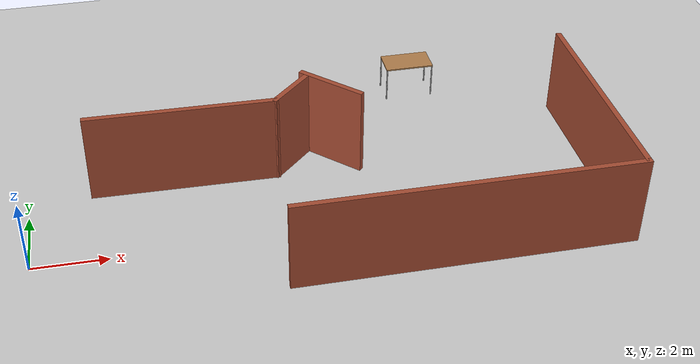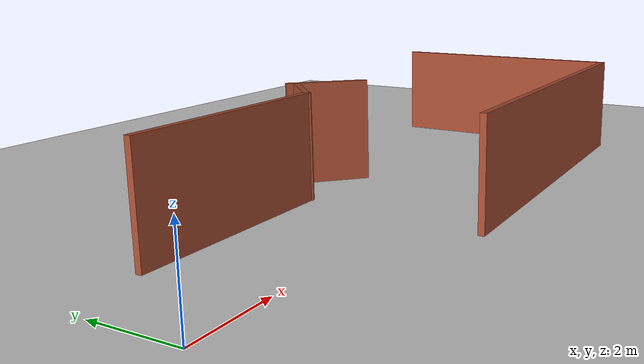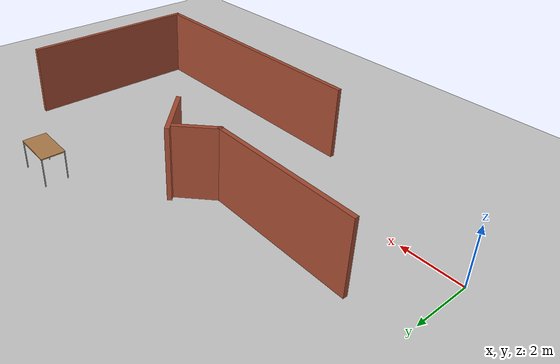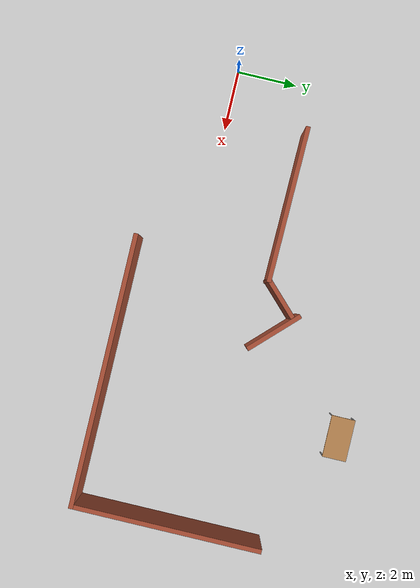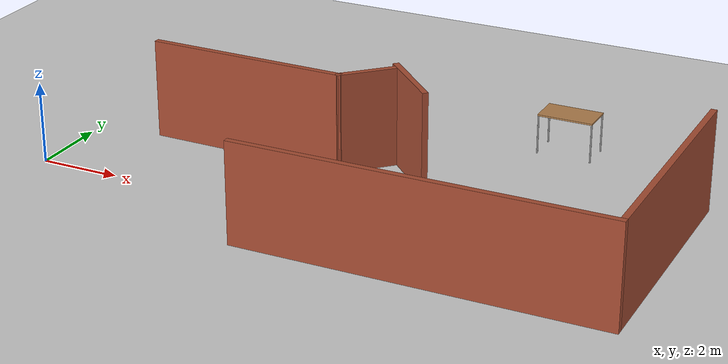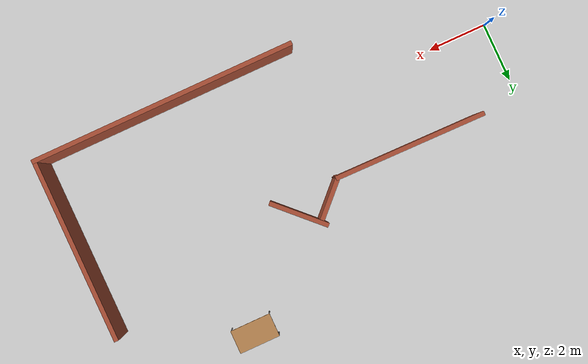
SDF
<sdf version="1.6">
 <world name="default">
  <plugin name="gazebo_octomap_plugin" filename="librotors_gazebo_octomap_plugin.so">
   <octomapPubTopic>world/octomap</octomapPubTopic>
   <octomapServiceName>world/get_octomap</octomapServiceName>
  </plugin>
  <plugin name="ros_interface_plugin" filename="librotors_gazebo_ros_interface_plugin.so"/>
  <light name="sun" type="directional">
   <pose>0 0 10 0 -0 0</pose>
   <diffuse>0.8 0.8 0.8 1</diffuse>
   <specular>0.1 0.1 0.1 1</specular>
   <attenuation>
    <range>1000</range>
    <constant>0.9</constant>
    <linear>0.01</linear>
    <quadratic>0.001</quadratic>
   </attenuation>
   <direction>-0.5 0.5 -1</direction>
  </light>
  <model name="ground_plane">
   <static>1</static>
   <link name="link">
    <collision name="collision">
     <geometry><plane><normal>0 0 1</normal><size>100 100</size></plane></geometry>
     <surface><friction><ode><mu>100</mu><mu2>50</mu2></ode></friction></surface>
    </collision>
    <visual name="visual">
     <cast_shadows>0</cast_shadows>
     <geometry><plane><normal>0 0 1</normal><size>100 100</size></plane></geometry>
     <material>
      <script><uri>file://media/materials/scripts/gazebo.material</uri><name>Gazebo/Grey</name></script>
     </material>
    </visual>
   </link>
  </model>
  <gravity>0 0 -9.8</gravity>
  <magnetic_field>6e-06 2.3e-05 -4.2e-05</magnetic_field>
  <atmosphere type="adiabatic"/>
  <physics name="default_physics" default="0" type="ode">
   <max_step_size>0.001</max_step_size>
   <real_time_factor>1</real_time_factor>
   <real_time_update_rate>1000</real_time_update_rate>
  </physics>
  <scene><ambient>0.4 0.4 0.4 1</ambient><background>0.7 0.7 0.7 1</background><shadows>1</shadows></scene>
  <spherical_coordinates>
   <surface_model>EARTH_WGS84</surface_model>
   <latitude_deg>0</latitude_deg>
   <longitude_deg>0</longitude_deg>
   <elevation>0</elevation>
   <heading_deg>0</heading_deg>
  </spherical_coordinates>
  <model name="map.world">
   <pose>8.42472 1.17172 0 0 -0 0</pose>
   <link name="Wall_0">
    <collision name="Wall_0_Collision">
     <geometry><box><size>5.10996 0.15 2.5</size></box></geometry>
     <pose>0 0 1.25 0 -0 0</pose>
    </collision>
    <visual name="Wall_0_Visual">
     <pose>0 0 1.25 0 -0 0</pose>
     <geometry><box><size>5.10996 0.15 2.5</size></box></geometry>
     <material>
      <script><uri>file://media/materials/scripts/gazebo.material</uri><name>Gazebo/Bricks</name></script>
      <ambient>1 1 1 1</ambient>
     </material>
    </visual>
    <pose>-4.23501 1.42128 0 0 0 -0.01492</pose>
   </link>
   <link name="Wall_2">
    <collision name="Wall_2_Collision">
     <geometry><box><size>1.5 0.15 2.5</size></box></geometry>
     <pose>0 0 1.25 0 -0 0</pose>
    </collision>
    <visual name="Wall_2_Visual">
     <pose>0 0 1.25 0 -0 0</pose>
     <geometry><box><size>1.5 0.15 2.5</size></box></geometry>
     <material>
      <script><uri>file://media/materials/scripts/gazebo.material</uri><name>Gazebo/Bricks</name></script>
      <ambient>1 1 1 1</ambient>
     </material>
    </visual>
    <pose>-1.27801 1.86157 0 0 0 -2.35619</pose>
   </link>
   <link name="Wall_4">
    <collision name="Wall_4_Collision">
     <geometry><box><size>2 0.15 2.5</size></box></geometry>
     <pose>0 0 1.25 0 -0 0</pose>
    </collision>
    <visual name="Wall_4_Visual">
     <pose>0 0 1.25 0 -0 0</pose>
     <geometry><box><size>2 0.15 2.5</size></box></geometry>
     <material>
      <script><uri>file://media/materials/scripts/gazebo.material</uri><name>Gazebo/Bricks</name></script>
      <ambient>1 1 1 1</ambient>
     </material>
    </visual>
    <pose>-0.160617 1.91735 0 0 0 -0.785398</pose>
   </link>
   <link name="Wall_6">
    <collision name="Wall_6_Collision">
     <geometry><box><size>9 0.15 2.5</size></box></geometry>
     <pose>0 0 1.25 0 -0 0</pose>
    </collision>
    <visual name="Wall_6_Visual">
     <pose>0 0 1.25 0 -0 0</pose>
     <geometry><box><size>9 0.15 2.5</size></box></geometry>
     <material>
      <script><uri>file://media/materials/scripts/gazebo.material</uri><name>Gazebo/Bricks</name></script>
      <ambient>1 1 1 1</ambient>
     </material>
    </visual>
    <pose>2.29082 -3.07814 0 0 -0 3.14159</pose>
   </link>
   <link name="Wall_9">
    <collision name="Wall_9_Collision">
     <geometry><box><size>6.25 0.15 2.5</size></box></geometry>
     <pose>0 0 1.25 0 -0 0</pose>
    </collision>
    <visual name="Wall_9_Visual">
     <pose>0 0 1.25 0 -0 0</pose>
     <geometry><box><size>6.25 0.15 2.5</size></box></geometry>
     <material>
      <script><uri>file://media/materials/scripts/gazebo.material</uri><name>Gazebo/Bricks</name></script>
      <ambient>1 1 1 1</ambient>
     </material>
    </visual>
    <pose>6.71582 0.028142 0 0 0 -1.5708</pose>
   </link>
   <static>1</static>
  </model>
  <model name="table">
   <static>0</static>
   <link name="link">
    <collision name="surface">
     <pose>0 0 1 0 -0 0</pose>
     <geometry><box><size>1.5 0.8 0.03</size></box></geometry>
     <surface><friction><ode><mu>0.6</mu><mu2>0.6</mu2></ode></friction></surface>
    </collision>
    <visual name="visual1">
     <pose>0 0 1 0 -0 0</pose>
     <geometry><box><size>1.4 0.8 0.04</size></box></geometry>
     <material>
      <script><uri>file://media/materials/scripts/gazebo.material</uri><name>Gazebo/Wood</name></script>
     </material>
    </visual>
    <collision name="front_left_leg">
     <pose>0.68 0.38 0.5 0 -0 0</pose>
     <geometry><cylinder><radius>0.02</radius><length>1</length></cylinder></geometry>
    </collision>
    <visual name="front_left_leg">
     <pose>0.68 0.38 0.5 0 -0 0</pose>
     <geometry><cylinder><radius>0.02</radius><length>1</length></cylinder></geometry>
     <material>
      <script><uri>file://media/materials/scripts/gazebo.material</uri><name>Gazebo/Grey</name></script>
     </material>
    </visual>
    <collision name="front_right_leg">
     <pose>0.68 -0.38 0.5 0 -0 0</pose>
     <geometry><cylinder><radius>0.02</radius><length>1</length></cylinder></geometry>
    </collision>
    <visual name="front_right_leg">
     <pose>0.68 -0.38 0.5 0 -0 0</pose>
     <geometry><cylinder><radius>0.02</radius><length>1</length></cylinder></geometry>
     <material>
      <script><uri>file://media/materials/scripts/gazebo.material</uri><name>Gazebo/Grey</name></script>
     </material>
    </visual>
    <collision name="back_right_leg">
     <pose>-0.68 -0.38 0.5 0 -0 0</pose>
     <geometry><cylinder><radius>0.02</radius><length>1</length></cylinder></geometry>
    </collision>
    <visual name="back_right_leg">
     <pose>-0.68 -0.38 0.5 0 -0 0</pose>
     <geometry><cylinder><radius>0.02</radius><length>1</length></cylinder></geometry>
     <material>
      <script><uri>file://media/materials/scripts/gazebo.material</uri><name>Gazebo/Grey</name></script>
     </material>
    </visual>
    <collision name="back_left_leg">
     <pose>-0.68 0.38 0.5 0 -0 0</pose>
     <geometry><cylinder><radius>0.02</radius><length>1</length></cylinder></geometry>
    </collision>
    <visual name="back_left_leg">
     <pose>-0.68 0.38 0.5 0 -0 0</pose>
     <geometry><cylinder><radius>0.02</radius><length>1</length></cylinder></geometry>
     <material>
      <script><uri>file://media/materials/scripts/gazebo.material</uri><name>Gazebo/Grey</name></script>
     </material>
    </visual>
    <inertial>
     <inertia><ixx>1</ixx><ixy>0</ixy><ixz>0</ixz><iyy>1</iyy><iyz>0</iyz><izz>1</izz></inertia>
     <mass>1</mass>
    </inertial>
   </link>
   <pose>11.1822 6.06203 -2e-06 0 -0 0</pose>
  </model>
 </world>
</sdf>
